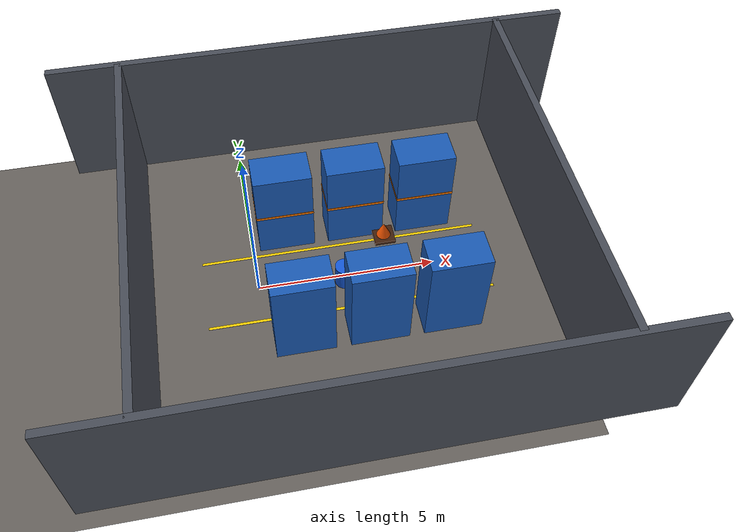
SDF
<?xml version="1.0"?>
<sdf version="1.9">
  <world name="phoenix_warehouse_world">
    <gravity>0 0 -9.81</gravity>
    <plugin filename="gz-sim-physics-system" name="gz::sim::systems::Physics"/>
    <plugin filename="gz-sim-sensors-system" name="gz::sim::systems::Sensors">
      <render_engine>ogre2</render_engine>
    </plugin>
    <plugin filename="gz-sim-scene-broadcaster-system" name="gz::sim::systems::SceneBroadcaster"/>
    <plugin filename="gz-sim-user-commands-system" name="gz::sim::systems::UserCommands"/>

    <!-- High-Bay Industrial Sodium / Warehouse Ambient Lighting -->
    <scene>
      <ambient>0.25 0.24 0.22 1.0</ambient>
      <background>0.10 0.10 0.10 1.0</background>
      <grid>false</grid>
    </scene>

    <light type="spot" name="bay_spot_1">
      <pose>1.5 0 4.0 0 0 0</pose>
      <diffuse>0.95 0.90 0.80 1.0</diffuse>
      <specular>0.3 0.3 0.2 1.0</specular>
      <attenuation><range>9.0</range><constant>0.5</constant><linear>0.06</linear></attenuation>
      <spot><inner_angle>0.9</inner_angle><outer_angle>1.5</outer_angle><falloff>1.0</falloff></spot>
      <direction>0 0 -1</direction>
    </light>
    <light type="spot" name="bay_spot_2">
      <pose>4.2 0 4.0 0 0 0</pose>
      <diffuse>0.95 0.90 0.80 1.0</diffuse>
      <specular>0.3 0.3 0.2 1.0</specular>
      <attenuation><range>9.0</range><constant>0.5</constant><linear>0.06</linear></attenuation>
      <spot><inner_angle>0.9</inner_angle><outer_angle>1.5</outer_angle><falloff>1.0</falloff></spot>
      <direction>0 0 -1</direction>
    </light>

    <!-- Cargo Fire Flame Glow Light -->
    <light type="point" name="pallet_fire_glow">
      <pose>3.8 1.2 0.8 0 0 0</pose>
      <diffuse>1.0 0.50 0.05 1.0</diffuse>
      <specular>0.9 0.4 0.0 1.0</specular>
      <attenuation><range>7.0</range><constant>0.35</constant><linear>0.12</linear><quadratic>0.04</quadratic></attenuation>
    </light>

    <!-- Polished Industrial Concrete Floor with Hazard Striping -->
    <model name="warehouse_floor">
      <static>true</static>
      <link name="link">
        <collision name="collision">
          <geometry><plane><normal>0 0 1</normal><size>16 12</size></plane></geometry>
        </collision>
        <visual name="concrete_surface">
          <geometry><plane><normal>0 0 1</normal><size>16 12</size></plane></geometry>
          <material>
            <ambient>0.30 0.29 0.27 1.0</ambient>
            <diffuse>0.40 0.38 0.36 1.0</diffuse>
            <specular>0.2 0.2 0.2 1.0</specular>
          </material>
        </visual>
        <!-- Yellow Safety Walking Lane Left -->
        <visual name="safety_lane_left">
          <pose>2.5 1.1 0.001 0 0 0</pose>
          <geometry><box><size>8.0 0.08 0.002</size></box></geometry>
          <material><ambient>0.95 0.8 0 1</ambient><diffuse>0.95 0.8 0 1</diffuse></material>
        </visual>
        <!-- Yellow Safety Walking Lane Right -->
        <visual name="safety_lane_right">
          <pose>2.5 -1.1 0.001 0 0 0</pose>
          <geometry><box><size>8.0 0.08 0.002</size></box></geometry>
          <material><ambient>0.95 0.8 0 1</ambient><diffuse>0.95 0.8 0 1</diffuse></material>
        </visual>
      </link>
    </model>

    <!-- Outer Warehouse Perimeter Walls -->
    <model name="wh_north_wall">
      <static>true</static><pose>2.5 5.5 2.0 0 0 0</pose>
      <link name="link"><collision name="c"><geometry><box><size>15 0.2 4.0</size></box></geometry></collision>
        <visual name="v"><geometry><box><size>15 0.2 4.0</size></box></geometry>
          <material><ambient>0.2 0.22 0.25 1</ambient><diffuse>0.28 0.3 0.34 1</diffuse></material>
        </visual>
      </link>
    </model>
    <model name="wh_south_wall">
      <static>true</static><pose>2.5 -5.5 2.0 0 0 0</pose>
      <link name="link"><collision name="c"><geometry><box><size>15 0.2 4.0</size></box></geometry></collision>
        <visual name="v"><geometry><box><size>15 0.2 4.0</size></box></geometry>
          <material><ambient>0.2 0.22 0.25 1</ambient><diffuse>0.28 0.3 0.34 1</diffuse></material>
        </visual>
      </link>
    </model>
    <model name="wh_east_wall">
      <static>true</static><pose>8.0 0 2.0 0 0 1.5708</pose>
      <link name="link"><collision name="c"><geometry><box><size>11 0.2 4.0</size></box></geometry></collision>
        <visual name="v"><geometry><box><size>11 0.2 4.0</size></box></geometry>
          <material><ambient>0.2 0.22 0.25 1</ambient><diffuse>0.28 0.3 0.34 1</diffuse></material>
        </visual>
      </link>
    </model>
    <model name="wh_west_wall">
      <static>true</static><pose>-3.0 0 2.0 0 0 1.5708</pose>
      <link name="link"><collision name="c"><geometry><box><size>11 0.2 4.0</size></box></geometry></collision>
        <visual name="v"><geometry><box><size>11 0.2 4.0</size></box></geometry>
          <material><ambient>0.2 0.22 0.25 1</ambient><diffuse>0.28 0.3 0.34 1</diffuse></material>
        </visual>
      </link>
    </model>

    <!-- ════════════════════════════════════════════════════════════════
         HIGH-BAY INDUSTRIAL STORAGE RACKS (North Side)
         ════════════════════════════════════════════════════════════════ -->
    <!-- Pallet Rack A1 -->
    <model name="pallet_rack_A1">
      <static>true</static>
      <pose>1.0 1.8 1.4 0 0 0</pose>
      <link name="link">
        <collision name="col"><geometry><box><size>1.6 1.0 2.8</size></box></geometry></collision>
        <!-- Blue Upright Frame -->
        <visual name="frame"><geometry><box><size>1.6 1.0 2.8</size></box></geometry>
          <material><ambient>0.08 0.25 0.55 1</ambient><diffuse>0.1 0.35 0.7 1</diffuse></material>
        </visual>
        <!-- Orange Crossbeams -->
        <visual name="beam_mid"><pose>0 0 0 0 0 0</pose><geometry><box><size>1.62 1.02 0.08</size></box></geometry>
          <material><ambient>0.9 0.4 0 1</ambient><diffuse>0.95 0.45 0 1</diffuse></material>
        </visual>
        <!-- Cardboard Boxes on Lower Shelf -->
        <visual name="boxes_low"><pose>-0.3 0 -0.5 0 0 0</pose><geometry><box><size>0.65 0.7 0.6</size></box></geometry>
          <material><ambient>0.6 0.45 0.28 1</ambient><diffuse>0.72 0.55 0.35 1</diffuse></material>
        </visual>
      </link>
    </model>

    <!-- Pallet Rack A2 (Near Incident) -->
    <model name="pallet_rack_A2">
      <static>true</static>
      <pose>3.0 1.8 1.4 0 0 0</pose>
      <link name="link">
        <collision name="col"><geometry><box><size>1.6 1.0 2.8</size></box></geometry></collision>
        <visual name="frame"><geometry><box><size>1.6 1.0 2.8</size></box></geometry>
          <material><ambient>0.08 0.25 0.55 1</ambient><diffuse>0.1 0.35 0.7 1</diffuse></material>
        </visual>
        <visual name="beam_mid"><pose>0 0 0 0 0 0</pose><geometry><box><size>1.62 1.02 0.08</size></box></geometry>
          <material><ambient>0.9 0.4 0 1</ambient><diffuse>0.95 0.45 0 1</diffuse></material>
        </visual>
        <visual name="boxes"><pose>0.2 0 0.5 0 0 0</pose><geometry><box><size>0.8 0.7 0.7</size></box></geometry>
          <material><ambient>0.6 0.45 0.28 1</ambient><diffuse>0.72 0.55 0.35 1</diffuse></material>
        </visual>
      </link>
    </model>

    <!-- Pallet Rack A3 -->
    <model name="pallet_rack_A3">
      <static>true</static>
      <pose>5.0 1.8 1.4 0 0 0</pose>
      <link name="link">
        <collision name="col"><geometry><box><size>1.6 1.0 2.8</size></box></geometry></collision>
        <visual name="frame"><geometry><box><size>1.6 1.0 2.8</size></box></geometry>
          <material><ambient>0.08 0.25 0.55 1</ambient><diffuse>0.1 0.35 0.7 1</diffuse></material>
        </visual>
        <visual name="beam_mid"><pose>0 0 0 0 0 0</pose><geometry><box><size>1.62 1.02 0.08</size></box></geometry>
          <material><ambient>0.9 0.4 0 1</ambient><diffuse>0.95 0.45 0 1</diffuse></material>
        </visual>
      </link>
    </model>

    <!-- ════════════════════════════════════════════════════════════════
         HIGH-BAY INDUSTRIAL STORAGE RACKS (South Side)
         ════════════════════════════════════════════════════════════════ -->
    <model name="pallet_rack_B1">
      <static>true</static><pose>1.0 -1.8 1.4 0 0 0</pose>
      <link name="link"><collision name="col"><geometry><box><size>1.6 1.0 2.8</size></box></geometry></collision>
        <visual name="frame"><geometry><box><size>1.6 1.0 2.8</size></box></geometry>
          <material><ambient>0.08 0.25 0.55 1</ambient><diffuse>0.1 0.35 0.7 1</diffuse></material>
        </visual>
        <visual name="boxes"><pose>0 0 -0.4 0 0 0</pose><geometry><box><size>0.9 0.8 0.6</size></box></geometry>
          <material><ambient>0.6 0.45 0.28 1</ambient><diffuse>0.72 0.55 0.35 1</diffuse></material>
        </visual>
      </link>
    </model>

    <model name="pallet_rack_B2">
      <static>true</static><pose>3.0 -1.8 1.4 0 0 0</pose>
      <link name="link"><collision name="col"><geometry><box><size>1.6 1.0 2.8</size></box></geometry></collision>
        <visual name="frame"><geometry><box><size>1.6 1.0 2.8</size></box></geometry>
          <material><ambient>0.08 0.25 0.55 1</ambient><diffuse>0.1 0.35 0.7 1</diffuse></material>
        </visual>
      </link>
    </model>

    <model name="pallet_rack_B3">
      <static>true</static><pose>5.0 -1.8 1.4 0 0 0</pose>
      <link name="link"><collision name="col"><geometry><box><size>1.6 1.0 2.8</size></box></geometry></collision>
        <visual name="frame"><geometry><box><size>1.6 1.0 2.8</size></box></geometry>
          <material><ambient>0.08 0.25 0.55 1</ambient><diffuse>0.1 0.35 0.7 1</diffuse></material>
        </visual>
      </link>
    </model>

    <model name="aisle_cargo_obstacle">
      <static>true</static>
      <pose>2.4 -0.20 0.35 0 0 0</pose>
      <link name="link">
        <collision name="col"><geometry><cylinder><radius>0.26</radius><length>0.7</length></cylinder></geometry></collision>
        <!-- Blue Industrial Chemical Drum -->
        <visual name="drum"><pose>0 0 0 0 0 0</pose><geometry><cylinder><radius>0.26</radius><length>0.7</length></cylinder></geometry>
          <material><ambient>0.05 0.25 0.75 1</ambient><diffuse>0.08 0.35 0.85 1</diffuse></material>
        </visual>
        <!-- Danger / Flammable Hazard Diamond -->
        <visual name="hazard_label"><pose>0.265 0 0.1 0 0 0</pose><geometry><box><size>0.01 0.15 0.15</size></box></geometry>
          <material><ambient>0.95 0.1 0.05 1</ambient><diffuse>0.95 0.1 0.05 1</diffuse><emissive>0.6 0 0 1</emissive></material>
        </visual>
      </link>
    </model>

    <model name="warehouse_worker_casualty">
      <static>true</static>
      <pose>1.2 -0.65 0.08 0 0 -0.2</pose>
      <link name="link">
        <!-- Body: Heavy Duty Grey Work Wear -->
        <visual name="body"><pose>0 0 0 0 0 0</pose><geometry><box><size>0.90 0.42 0.18</size></box></geometry>
          <material><ambient>0.2 0.22 0.25 1</ambient><diffuse>0.3 0.32 0.35 1</diffuse></material>
        </visual>
        <!-- Bright Fluorescent Orange High-Vis Vest -->
        <visual name="vest"><pose>0.1 0 0.02 0 0 0</pose><geometry><box><size>0.45 0.43 0.17</size></box></geometry>
          <material><ambient>1 0.35 0 1</ambient><diffuse>1 0.4 0 1</diffuse><emissive>0.6 0.2 0 1</emissive></material>
        </visual>
        <!-- Yellow Industrial Hard Hat -->
        <visual name="helmet"><pose>0.55 0 0.05 0 0 0</pose><geometry><sphere><radius>0.13</radius></sphere></geometry>
          <material><ambient>0.95 0.8 0 1</ambient><diffuse>0.95 0.8 0 1</diffuse></material>
        </visual>
      </link>
    </model>

    <model name="fire_target">
      <static>true</static>
      <pose>3.8 1.1 0.35 0 0 0</pose>
      <link name="link">

        <!-- Burning Wooden Pallet Base -->
        <visual name="pallet_base">
          <pose>0 0 -0.2 0 0 0</pose>
          <geometry><box><size>0.6 0.6 0.1</size></box></geometry>
          <material><ambient>0.2 0.1 0.05 1</ambient><diffuse>0.25 0.12 0.05 1</diffuse></material>
        </visual>

        <!-- Core Flame (White-Yellow Intensity) -->
        <visual name="flame_core">
          <pose>0 0 0.12 0 0 0</pose>
          <geometry><cone><radius>0.09</radius><length>0.4</length></cone></geometry>
          <material>
            <ambient>1.0 0.95 0.5 1.0</ambient>
            <diffuse>1.0 0.95 0.5 1.0</diffuse>
            <emissive>1.0 0.95 0.6 1.0</emissive>
          </material>
        </visual>

        <!-- Outer Flame Flare (Vibrant Orange-Red) -->
        <visual name="flame_outer">
          <pose>0 0 0.06 0 0 0</pose>
          <geometry><cone><radius>0.22</radius><length>0.5</length></cone></geometry>
          <material>
            <ambient>1.0 0.35 0.0 1.0</ambient>
            <diffuse>1.0 0.35 0.0 1.0</diffuse>
            <emissive>0.98 0.30 0.0 1.0</emissive>
          </material>
        </visual>
      </link>
    </model>
  </world>
</sdf>
